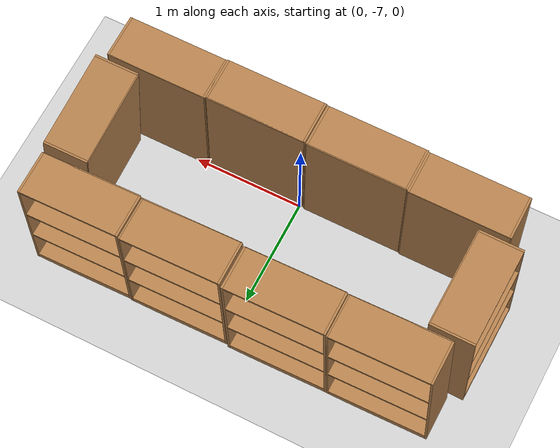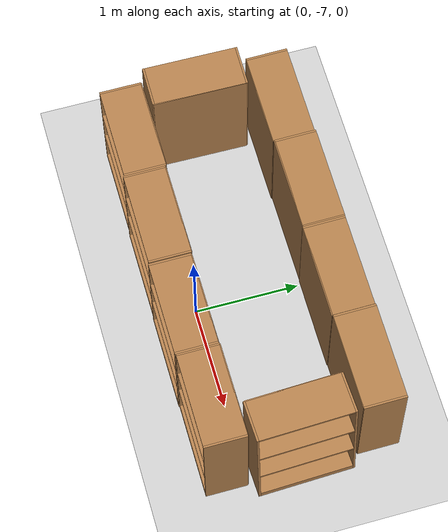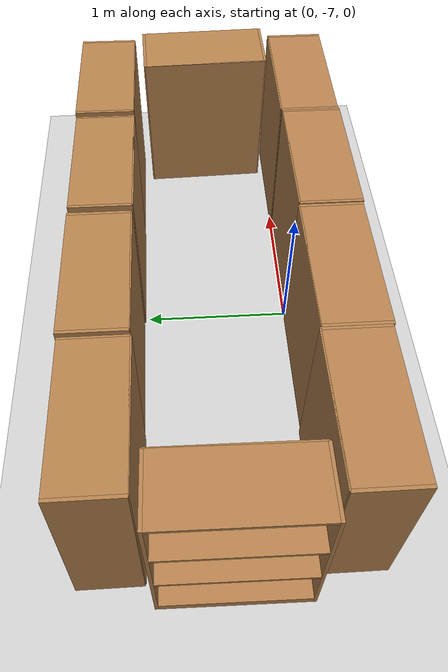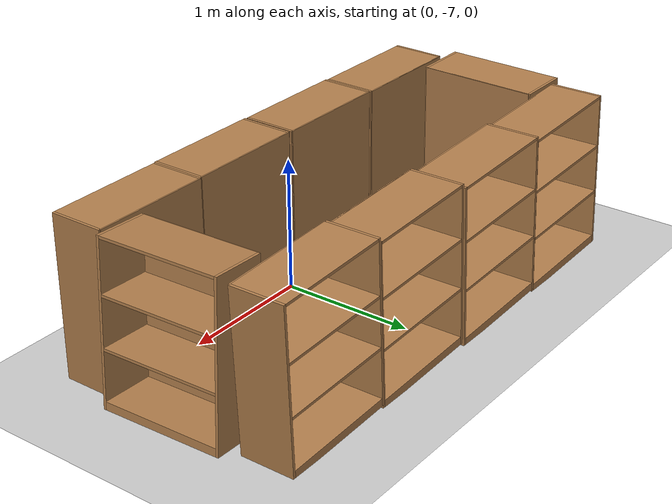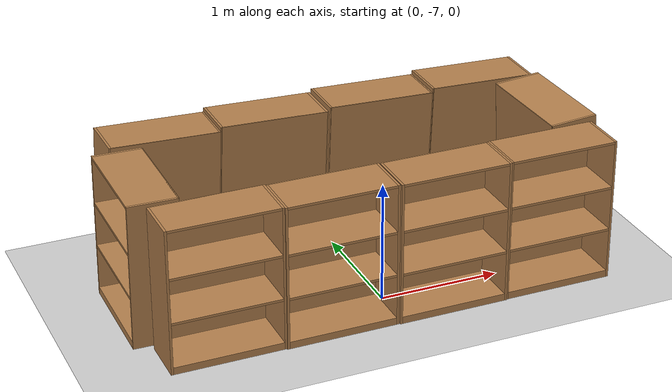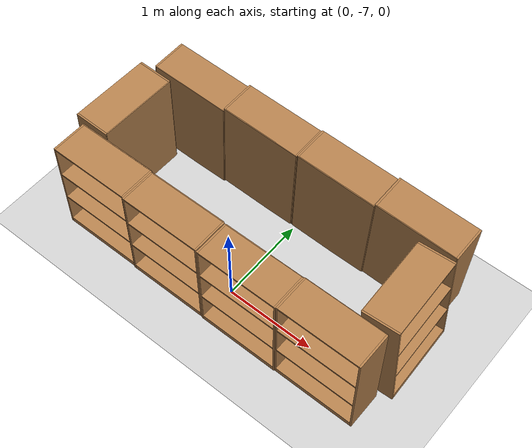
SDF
<sdf version="1.6">
 <world name="default">
  <light name="sun" type="directional">
   <pose>0 0 10 0 -0 0</pose>
   <diffuse>0.8 0.8 0.8 1</diffuse>
   <specular>0.2 0.2 0.2 1</specular>
   <attenuation>
    <range>1000</range>
    <constant>0.9</constant>
    <linear>0.01</linear>
    <quadratic>0.001</quadratic>
   </attenuation>
   <direction>-0.5 0.1 -0.9</direction>
  </light>
  <model name="ground_plane">
   <static>1</static>
   <link name="link">
    <collision name="collision">
     <geometry><plane><normal>0 0 1</normal><size>100 100</size></plane></geometry>
     <surface>
      <contact><collide_bitmask>65535</collide_bitmask></contact>
      <friction><ode><mu>100</mu><mu2>50</mu2></ode></friction>
     </surface>
    </collision>
    <visual name="visual">
     <cast_shadows>0</cast_shadows>
     <geometry><plane><normal>0 0 1</normal><size>100 100</size></plane></geometry>
     <material>
      <script><uri>file://media/materials/scripts/gazebo.material</uri><name>Gazebo/Grey</name></script>
     </material>
    </visual>
   </link>
  </model>
  <gravity>0 0 -9.8</gravity>
  <magnetic_field>6e-06 2.3e-05 -4.2e-05</magnetic_field>
  <atmosphere type="adiabatic"/>
  <physics name="default_physics" default="0" type="ode">
   <max_step_size>0.001</max_step_size>
   <real_time_factor>1</real_time_factor>
   <real_time_update_rate>1000</real_time_update_rate>
  </physics>
  <scene><ambient>0.4 0.4 0.4 1</ambient><background>0.7 0.7 0.7 1</background><shadows>1</shadows></scene>
  <spherical_coordinates>
   <surface_model>EARTH_WGS84</surface_model>
   <latitude_deg>0</latitude_deg>
   <longitude_deg>0</longitude_deg>
   <elevation>0</elevation>
   <heading_deg>0</heading_deg>
  </spherical_coordinates>
  <model name="bookshelf">
   <static>1</static>
   <link name="link">
    <inertial><mass>1</mass></inertial>
    <collision name="back">
     <pose>0 0.005 0.6 0 -0 0</pose>
     <geometry><box><size>0.9 0.01 1.2</size></box></geometry>
    </collision>
    <visual name="visual1">
     <pose>0 0.005 0.6 0 -0 0</pose>
     <geometry><box><size>0.9 0.01 1.2</size></box></geometry>
     <material>
      <script><uri>file://media/materials/scripts/gazebo.material</uri><name>Gazebo/Wood</name></script>
     </material>
    </visual>
    <collision name="left_side">
     <pose>0.45 -0.195 0.6 0 -0 0</pose>
     <geometry><box><size>0.02 0.4 1.2</size></box></geometry>
    </collision>
    <visual name="visual2">
     <pose>0.45 -0.195 0.6 0 -0 0</pose>
     <geometry><box><size>0.02 0.4 1.2</size></box></geometry>
     <material>
      <script><uri>file://media/materials/scripts/gazebo.material</uri><name>Gazebo/Wood</name></script>
     </material>
    </visual>
    <collision name="right_side">
     <pose>-0.45 -0.195 0.6 0 -0 0</pose>
     <geometry><box><size>0.02 0.4 1.2</size></box></geometry>
    </collision>
    <visual name="visual3">
     <pose>-0.45 -0.195 0.6 0 -0 0</pose>
     <geometry><box><size>0.02 0.4 1.2</size></box></geometry>
     <material>
      <script><uri>file://media/materials/scripts/gazebo.material</uri><name>Gazebo/Wood</name></script>
     </material>
    </visual>
    <collision name="bottom">
     <pose>0 -0.195 0.03 0 -0 0</pose>
     <geometry><box><size>0.88 0.4 0.06</size></box></geometry>
    </collision>
    <visual name="visual4">
     <pose>0 -0.195 0.03 0 -0 0</pose>
     <geometry><box><size>0.88 0.4 0.06</size></box></geometry>
     <material>
      <script><uri>file://media/materials/scripts/gazebo.material</uri><name>Gazebo/Wood</name></script>
     </material>
    </visual>
    <collision name="top">
     <pose>0 -0.195 1.19 0 -0 0</pose>
     <geometry><box><size>0.88 0.4 0.02</size></box></geometry>
    </collision>
    <visual name="visual5">
     <pose>0 -0.195 1.19 0 -0 0</pose>
     <geometry><box><size>0.88 0.4 0.02</size></box></geometry>
     <material>
      <script><uri>file://media/materials/scripts/gazebo.material</uri><name>Gazebo/Wood</name></script>
     </material>
    </visual>
    <collision name="low_shelf">
     <pose>0 -0.195 0.43 0 -0 0</pose>
     <geometry><box><size>0.88 0.4 0.02</size></box></geometry>
    </collision>
    <visual name="visual6">
     <pose>0 -0.195 0.43 0 -0 0</pose>
     <geometry><box><size>0.88 0.4 0.02</size></box></geometry>
     <material>
      <script><uri>file://media/materials/scripts/gazebo.material</uri><name>Gazebo/Wood</name></script>
     </material>
    </visual>
    <collision name="high_shelf">
     <pose>0 -0.195 0.8 0 -0 0</pose>
     <geometry><box><size>0.88 0.4 0.02</size></box></geometry>
    </collision>
    <visual name="visual7">
     <pose>0 -0.195 0.8 0 -0 0</pose>
     <geometry><box><size>0.88 0.4 0.02</size></box></geometry>
     <material>
      <script><uri>file://media/materials/scripts/gazebo.material</uri><name>Gazebo/Wood</name></script>
     </material>
    </visual>
   </link>
   <pose>0.430535 -7.0148 0 0 -0 0</pose>
  </model>
  <model name="bookshelf_0">
   <static>1</static>
   <link name="link">
    <inertial><mass>1</mass></inertial>
    <collision name="back">
     <pose>0 0.005 0.6 0 -0 0</pose>
     <geometry><box><size>0.9 0.01 1.2</size></box></geometry>
    </collision>
    <visual name="visual1">
     <pose>0 0.005 0.6 0 -0 0</pose>
     <geometry><box><size>0.9 0.01 1.2</size></box></geometry>
     <material>
      <script><uri>file://media/materials/scripts/gazebo.material</uri><name>Gazebo/Wood</name></script>
     </material>
    </visual>
    <collision name="left_side">
     <pose>0.45 -0.195 0.6 0 -0 0</pose>
     <geometry><box><size>0.02 0.4 1.2</size></box></geometry>
    </collision>
    <visual name="visual2">
     <pose>0.45 -0.195 0.6 0 -0 0</pose>
     <geometry><box><size>0.02 0.4 1.2</size></box></geometry>
     <material>
      <script><uri>file://media/materials/scripts/gazebo.material</uri><name>Gazebo/Wood</name></script>
     </material>
    </visual>
    <collision name="right_side">
     <pose>-0.45 -0.195 0.6 0 -0 0</pose>
     <geometry><box><size>0.02 0.4 1.2</size></box></geometry>
    </collision>
    <visual name="visual3">
     <pose>-0.45 -0.195 0.6 0 -0 0</pose>
     <geometry><box><size>0.02 0.4 1.2</size></box></geometry>
     <material>
      <script><uri>file://media/materials/scripts/gazebo.material</uri><name>Gazebo/Wood</name></script>
     </material>
    </visual>
    <collision name="bottom">
     <pose>0 -0.195 0.03 0 -0 0</pose>
     <geometry><box><size>0.88 0.4 0.06</size></box></geometry>
    </collision>
    <visual name="visual4">
     <pose>0 -0.195 0.03 0 -0 0</pose>
     <geometry><box><size>0.88 0.4 0.06</size></box></geometry>
     <material>
      <script><uri>file://media/materials/scripts/gazebo.material</uri><name>Gazebo/Wood</name></script>
     </material>
    </visual>
    <collision name="top">
     <pose>0 -0.195 1.19 0 -0 0</pose>
     <geometry><box><size>0.88 0.4 0.02</size></box></geometry>
    </collision>
    <visual name="visual5">
     <pose>0 -0.195 1.19 0 -0 0</pose>
     <geometry><box><size>0.88 0.4 0.02</size></box></geometry>
     <material>
      <script><uri>file://media/materials/scripts/gazebo.material</uri><name>Gazebo/Wood</name></script>
     </material>
    </visual>
    <collision name="low_shelf">
     <pose>0 -0.195 0.43 0 -0 0</pose>
     <geometry><box><size>0.88 0.4 0.02</size></box></geometry>
    </collision>
    <visual name="visual6">
     <pose>0 -0.195 0.43 0 -0 0</pose>
     <geometry><box><size>0.88 0.4 0.02</size></box></geometry>
     <material>
      <script><uri>file://media/materials/scripts/gazebo.material</uri><name>Gazebo/Wood</name></script>
     </material>
    </visual>
    <collision name="high_shelf">
     <pose>0 -0.195 0.8 0 -0 0</pose>
     <geometry><box><size>0.88 0.4 0.02</size></box></geometry>
    </collision>
    <visual name="visual7">
     <pose>0 -0.195 0.8 0 -0 0</pose>
     <geometry><box><size>0.88 0.4 0.02</size></box></geometry>
     <material>
      <script><uri>file://media/materials/scripts/gazebo.material</uri><name>Gazebo/Wood</name></script>
     </material>
    </visual>
   </link>
   <pose>-0.497035 -7.00727 0 0 -0 0</pose>
  </model>
  <model name="bookshelf_1">
   <static>1</static>
   <link name="link">
    <inertial><mass>1</mass></inertial>
    <collision name="back">
     <pose>0 0.005 0.6 0 -0 0</pose>
     <geometry><box><size>0.9 0.01 1.2</size></box></geometry>
    </collision>
    <visual name="visual1">
     <pose>0 0.005 0.6 0 -0 0</pose>
     <geometry><box><size>0.9 0.01 1.2</size></box></geometry>
     <material>
      <script><uri>file://media/materials/scripts/gazebo.material</uri><name>Gazebo/Wood</name></script>
     </material>
    </visual>
    <collision name="left_side">
     <pose>0.45 -0.195 0.6 0 -0 0</pose>
     <geometry><box><size>0.02 0.4 1.2</size></box></geometry>
    </collision>
    <visual name="visual2">
     <pose>0.45 -0.195 0.6 0 -0 0</pose>
     <geometry><box><size>0.02 0.4 1.2</size></box></geometry>
     <material>
      <script><uri>file://media/materials/scripts/gazebo.material</uri><name>Gazebo/Wood</name></script>
     </material>
    </visual>
    <collision name="right_side">
     <pose>-0.45 -0.195 0.6 0 -0 0</pose>
     <geometry><box><size>0.02 0.4 1.2</size></box></geometry>
    </collision>
    <visual name="visual3">
     <pose>-0.45 -0.195 0.6 0 -0 0</pose>
     <geometry><box><size>0.02 0.4 1.2</size></box></geometry>
     <material>
      <script><uri>file://media/materials/scripts/gazebo.material</uri><name>Gazebo/Wood</name></script>
     </material>
    </visual>
    <collision name="bottom">
     <pose>0 -0.195 0.03 0 -0 0</pose>
     <geometry><box><size>0.88 0.4 0.06</size></box></geometry>
    </collision>
    <visual name="visual4">
     <pose>0 -0.195 0.03 0 -0 0</pose>
     <geometry><box><size>0.88 0.4 0.06</size></box></geometry>
     <material>
      <script><uri>file://media/materials/scripts/gazebo.material</uri><name>Gazebo/Wood</name></script>
     </material>
    </visual>
    <collision name="top">
     <pose>0 -0.195 1.19 0 -0 0</pose>
     <geometry><box><size>0.88 0.4 0.02</size></box></geometry>
    </collision>
    <visual name="visual5">
     <pose>0 -0.195 1.19 0 -0 0</pose>
     <geometry><box><size>0.88 0.4 0.02</size></box></geometry>
     <material>
      <script><uri>file://media/materials/scripts/gazebo.material</uri><name>Gazebo/Wood</name></script>
     </material>
    </visual>
    <collision name="low_shelf">
     <pose>0 -0.195 0.43 0 -0 0</pose>
     <geometry><box><size>0.88 0.4 0.02</size></box></geometry>
    </collision>
    <visual name="visual6">
     <pose>0 -0.195 0.43 0 -0 0</pose>
     <geometry><box><size>0.88 0.4 0.02</size></box></geometry>
     <material>
      <script><uri>file://media/materials/scripts/gazebo.material</uri><name>Gazebo/Wood</name></script>
     </material>
    </visual>
    <collision name="high_shelf">
     <pose>0 -0.195 0.8 0 -0 0</pose>
     <geometry><box><size>0.88 0.4 0.02</size></box></geometry>
    </collision>
    <visual name="visual7">
     <pose>0 -0.195 0.8 0 -0 0</pose>
     <geometry><box><size>0.88 0.4 0.02</size></box></geometry>
     <material>
      <script><uri>file://media/materials/scripts/gazebo.material</uri><name>Gazebo/Wood</name></script>
     </material>
    </visual>
   </link>
   <pose>-1.41557 -6.99715 0 0 -0 0</pose>
  </model>
  <model name="bookshelf_2">
   <static>1</static>
   <link name="link">
    <inertial><mass>1</mass></inertial>
    <collision name="back">
     <pose>0 0.005 0.6 0 -0 0</pose>
     <geometry><box><size>0.9 0.01 1.2</size></box></geometry>
    </collision>
    <visual name="visual1">
     <pose>0 0.005 0.6 0 -0 0</pose>
     <geometry><box><size>0.9 0.01 1.2</size></box></geometry>
     <material>
      <script><uri>file://media/materials/scripts/gazebo.material</uri><name>Gazebo/Wood</name></script>
     </material>
    </visual>
    <collision name="left_side">
     <pose>0.45 -0.195 0.6 0 -0 0</pose>
     <geometry><box><size>0.02 0.4 1.2</size></box></geometry>
    </collision>
    <visual name="visual2">
     <pose>0.45 -0.195 0.6 0 -0 0</pose>
     <geometry><box><size>0.02 0.4 1.2</size></box></geometry>
     <material>
      <script><uri>file://media/materials/scripts/gazebo.material</uri><name>Gazebo/Wood</name></script>
     </material>
    </visual>
    <collision name="right_side">
     <pose>-0.45 -0.195 0.6 0 -0 0</pose>
     <geometry><box><size>0.02 0.4 1.2</size></box></geometry>
    </collision>
    <visual name="visual3">
     <pose>-0.45 -0.195 0.6 0 -0 0</pose>
     <geometry><box><size>0.02 0.4 1.2</size></box></geometry>
     <material>
      <script><uri>file://media/materials/scripts/gazebo.material</uri><name>Gazebo/Wood</name></script>
     </material>
    </visual>
    <collision name="bottom">
     <pose>0 -0.195 0.03 0 -0 0</pose>
     <geometry><box><size>0.88 0.4 0.06</size></box></geometry>
    </collision>
    <visual name="visual4">
     <pose>0 -0.195 0.03 0 -0 0</pose>
     <geometry><box><size>0.88 0.4 0.06</size></box></geometry>
     <material>
      <script><uri>file://media/materials/scripts/gazebo.material</uri><name>Gazebo/Wood</name></script>
     </material>
    </visual>
    <collision name="top">
     <pose>0 -0.195 1.19 0 -0 0</pose>
     <geometry><box><size>0.88 0.4 0.02</size></box></geometry>
    </collision>
    <visual name="visual5">
     <pose>0 -0.195 1.19 0 -0 0</pose>
     <geometry><box><size>0.88 0.4 0.02</size></box></geometry>
     <material>
      <script><uri>file://media/materials/scripts/gazebo.material</uri><name>Gazebo/Wood</name></script>
     </material>
    </visual>
    <collision name="low_shelf">
     <pose>0 -0.195 0.43 0 -0 0</pose>
     <geometry><box><size>0.88 0.4 0.02</size></box></geometry>
    </collision>
    <visual name="visual6">
     <pose>0 -0.195 0.43 0 -0 0</pose>
     <geometry><box><size>0.88 0.4 0.02</size></box></geometry>
     <material>
      <script><uri>file://media/materials/scripts/gazebo.material</uri><name>Gazebo/Wood</name></script>
     </material>
    </visual>
    <collision name="high_shelf">
     <pose>0 -0.195 0.8 0 -0 0</pose>
     <geometry><box><size>0.88 0.4 0.02</size></box></geometry>
    </collision>
    <visual name="visual7">
     <pose>0 -0.195 0.8 0 -0 0</pose>
     <geometry><box><size>0.88 0.4 0.02</size></box></geometry>
     <material>
      <script><uri>file://media/materials/scripts/gazebo.material</uri><name>Gazebo/Wood</name></script>
     </material>
    </visual>
   </link>
   <pose>1.34735 -7.00743 0 0 -0 0</pose>
  </model>
  <model name="bookshelf_3">
   <static>1</static>
   <link name="link">
    <inertial><mass>1</mass></inertial>
    <collision name="back">
     <pose>0 0.005 0.6 0 -0 0</pose>
     <geometry><box><size>0.9 0.01 1.2</size></box></geometry>
    </collision>
    <visual name="visual1">
     <pose>0 0.005 0.6 0 -0 0</pose>
     <geometry><box><size>0.9 0.01 1.2</size></box></geometry>
     <material>
      <script><uri>file://media/materials/scripts/gazebo.material</uri><name>Gazebo/Wood</name></script>
     </material>
    </visual>
    <collision name="left_side">
     <pose>0.45 -0.195 0.6 0 -0 0</pose>
     <geometry><box><size>0.02 0.4 1.2</size></box></geometry>
    </collision>
    <visual name="visual2">
     <pose>0.45 -0.195 0.6 0 -0 0</pose>
     <geometry><box><size>0.02 0.4 1.2</size></box></geometry>
     <material>
      <script><uri>file://media/materials/scripts/gazebo.material</uri><name>Gazebo/Wood</name></script>
     </material>
    </visual>
    <collision name="right_side">
     <pose>-0.45 -0.195 0.6 0 -0 0</pose>
     <geometry><box><size>0.02 0.4 1.2</size></box></geometry>
    </collision>
    <visual name="visual3">
     <pose>-0.45 -0.195 0.6 0 -0 0</pose>
     <geometry><box><size>0.02 0.4 1.2</size></box></geometry>
     <material>
      <script><uri>file://media/materials/scripts/gazebo.material</uri><name>Gazebo/Wood</name></script>
     </material>
    </visual>
    <collision name="bottom">
     <pose>0 -0.195 0.03 0 -0 0</pose>
     <geometry><box><size>0.88 0.4 0.06</size></box></geometry>
    </collision>
    <visual name="visual4">
     <pose>0 -0.195 0.03 0 -0 0</pose>
     <geometry><box><size>0.88 0.4 0.06</size></box></geometry>
     <material>
      <script><uri>file://media/materials/scripts/gazebo.material</uri><name>Gazebo/Wood</name></script>
     </material>
    </visual>
    <collision name="top">
     <pose>0 -0.195 1.19 0 -0 0</pose>
     <geometry><box><size>0.88 0.4 0.02</size></box></geometry>
    </collision>
    <visual name="visual5">
     <pose>0 -0.195 1.19 0 -0 0</pose>
     <geometry><box><size>0.88 0.4 0.02</size></box></geometry>
     <material>
      <script><uri>file://media/materials/scripts/gazebo.material</uri><name>Gazebo/Wood</name></script>
     </material>
    </visual>
    <collision name="low_shelf">
     <pose>0 -0.195 0.43 0 -0 0</pose>
     <geometry><box><size>0.88 0.4 0.02</size></box></geometry>
    </collision>
    <visual name="visual6">
     <pose>0 -0.195 0.43 0 -0 0</pose>
     <geometry><box><size>0.88 0.4 0.02</size></box></geometry>
     <material>
      <script><uri>file://media/materials/scripts/gazebo.material</uri><name>Gazebo/Wood</name></script>
     </material>
    </visual>
    <collision name="high_shelf">
     <pose>0 -0.195 0.8 0 -0 0</pose>
     <geometry><box><size>0.88 0.4 0.02</size></box></geometry>
    </collision>
    <visual name="visual7">
     <pose>0 -0.195 0.8 0 -0 0</pose>
     <geometry><box><size>0.88 0.4 0.02</size></box></geometry>
     <material>
      <script><uri>file://media/materials/scripts/gazebo.material</uri><name>Gazebo/Wood</name></script>
     </material>
    </visual>
   </link>
   <pose>1.53957 -6.49468 0 -0.054183 -0.002472 1.60166</pose>
  </model>
  <model name="bookshelf_3_clone">
   <static>1</static>
   <link name="link">
    <inertial><mass>1</mass></inertial>
    <collision name="back">
     <pose>0 0.005 0.6 0 -0 0</pose>
     <geometry><box><size>0.9 0.01 1.2</size></box></geometry>
    </collision>
    <visual name="visual1">
     <pose>0 0.005 0.6 0 -0 0</pose>
     <geometry><box><size>0.9 0.01 1.2</size></box></geometry>
     <material>
      <script><uri>file://media/materials/scripts/gazebo.material</uri><name>Gazebo/Wood</name></script>
     </material>
    </visual>
    <collision name="left_side">
     <pose>0.45 -0.195 0.6 0 -0 0</pose>
     <geometry><box><size>0.02 0.4 1.2</size></box></geometry>
    </collision>
    <visual name="visual2">
     <pose>0.45 -0.195 0.6 0 -0 0</pose>
     <geometry><box><size>0.02 0.4 1.2</size></box></geometry>
     <material>
      <script><uri>file://media/materials/scripts/gazebo.material</uri><name>Gazebo/Wood</name></script>
     </material>
    </visual>
    <collision name="right_side">
     <pose>-0.45 -0.195 0.6 0 -0 0</pose>
     <geometry><box><size>0.02 0.4 1.2</size></box></geometry>
    </collision>
    <visual name="visual3">
     <pose>-0.45 -0.195 0.6 0 -0 0</pose>
     <geometry><box><size>0.02 0.4 1.2</size></box></geometry>
     <material>
      <script><uri>file://media/materials/scripts/gazebo.material</uri><name>Gazebo/Wood</name></script>
     </material>
    </visual>
    <collision name="bottom">
     <pose>0 -0.195 0.03 0 -0 0</pose>
     <geometry><box><size>0.88 0.4 0.06</size></box></geometry>
    </collision>
    <visual name="visual4">
     <pose>0 -0.195 0.03 0 -0 0</pose>
     <geometry><box><size>0.88 0.4 0.06</size></box></geometry>
     <material>
      <script><uri>file://media/materials/scripts/gazebo.material</uri><name>Gazebo/Wood</name></script>
     </material>
    </visual>
    <collision name="top">
     <pose>0 -0.195 1.19 0 -0 0</pose>
     <geometry><box><size>0.88 0.4 0.02</size></box></geometry>
    </collision>
    <visual name="visual5">
     <pose>0 -0.195 1.19 0 -0 0</pose>
     <geometry><box><size>0.88 0.4 0.02</size></box></geometry>
     <material>
      <script><uri>file://media/materials/scripts/gazebo.material</uri><name>Gazebo/Wood</name></script>
     </material>
    </visual>
    <collision name="low_shelf">
     <pose>0 -0.195 0.43 0 -0 0</pose>
     <geometry><box><size>0.88 0.4 0.02</size></box></geometry>
    </collision>
    <visual name="visual6">
     <pose>0 -0.195 0.43 0 -0 0</pose>
     <geometry><box><size>0.88 0.4 0.02</size></box></geometry>
     <material>
      <script><uri>file://media/materials/scripts/gazebo.material</uri><name>Gazebo/Wood</name></script>
     </material>
    </visual>
    <collision name="high_shelf">
     <pose>0 -0.195 0.8 0 -0 0</pose>
     <geometry><box><size>0.88 0.4 0.02</size></box></geometry>
    </collision>
    <visual name="visual7">
     <pose>0 -0.195 0.8 0 -0 0</pose>
     <geometry><box><size>0.88 0.4 0.02</size></box></geometry>
     <material>
      <script><uri>file://media/materials/scripts/gazebo.material</uri><name>Gazebo/Wood</name></script>
     </material>
    </visual>
   </link>
   <pose>1.32986 -5.95475 0 -0.007372 -0.036243 -3.13718</pose>
  </model>
  <model name="bookshelf_3_clone_clone">
   <static>1</static>
   <link name="link">
    <inertial><mass>1</mass></inertial>
    <collision name="back">
     <pose>0 0.005 0.6 0 -0 0</pose>
     <geometry><box><size>0.9 0.01 1.2</size></box></geometry>
    </collision>
    <visual name="visual1">
     <pose>0 0.005 0.6 0 -0 0</pose>
     <geometry><box><size>0.9 0.01 1.2</size></box></geometry>
     <material>
      <script><uri>file://media/materials/scripts/gazebo.material</uri><name>Gazebo/Wood</name></script>
     </material>
    </visual>
    <collision name="left_side">
     <pose>0.45 -0.195 0.6 0 -0 0</pose>
     <geometry><box><size>0.02 0.4 1.2</size></box></geometry>
    </collision>
    <visual name="visual2">
     <pose>0.45 -0.195 0.6 0 -0 0</pose>
     <geometry><box><size>0.02 0.4 1.2</size></box></geometry>
     <material>
      <script><uri>file://media/materials/scripts/gazebo.material</uri><name>Gazebo/Wood</name></script>
     </material>
    </visual>
    <collision name="right_side">
     <pose>-0.45 -0.195 0.6 0 -0 0</pose>
     <geometry><box><size>0.02 0.4 1.2</size></box></geometry>
    </collision>
    <visual name="visual3">
     <pose>-0.45 -0.195 0.6 0 -0 0</pose>
     <geometry><box><size>0.02 0.4 1.2</size></box></geometry>
     <material>
      <script><uri>file://media/materials/scripts/gazebo.material</uri><name>Gazebo/Wood</name></script>
     </material>
    </visual>
    <collision name="bottom">
     <pose>0 -0.195 0.03 0 -0 0</pose>
     <geometry><box><size>0.88 0.4 0.06</size></box></geometry>
    </collision>
    <visual name="visual4">
     <pose>0 -0.195 0.03 0 -0 0</pose>
     <geometry><box><size>0.88 0.4 0.06</size></box></geometry>
     <material>
      <script><uri>file://media/materials/scripts/gazebo.material</uri><name>Gazebo/Wood</name></script>
     </material>
    </visual>
    <collision name="top">
     <pose>0 -0.195 1.19 0 -0 0</pose>
     <geometry><box><size>0.88 0.4 0.02</size></box></geometry>
    </collision>
    <visual name="visual5">
     <pose>0 -0.195 1.19 0 -0 0</pose>
     <geometry><box><size>0.88 0.4 0.02</size></box></geometry>
     <material>
      <script><uri>file://media/materials/scripts/gazebo.material</uri><name>Gazebo/Wood</name></script>
     </material>
    </visual>
    <collision name="low_shelf">
     <pose>0 -0.195 0.43 0 -0 0</pose>
     <geometry><box><size>0.88 0.4 0.02</size></box></geometry>
    </collision>
    <visual name="visual6">
     <pose>0 -0.195 0.43 0 -0 0</pose>
     <geometry><box><size>0.88 0.4 0.02</size></box></geometry>
     <material>
      <script><uri>file://media/materials/scripts/gazebo.material</uri><name>Gazebo/Wood</name></script>
     </material>
    </visual>
    <collision name="high_shelf">
     <pose>0 -0.195 0.8 0 -0 0</pose>
     <geometry><box><size>0.88 0.4 0.02</size></box></geometry>
    </collision>
    <visual name="visual7">
     <pose>0 -0.195 0.8 0 -0 0</pose>
     <geometry><box><size>0.88 0.4 0.02</size></box></geometry>
     <material>
      <script><uri>file://media/materials/scripts/gazebo.material</uri><name>Gazebo/Wood</name></script>
     </material>
    </visual>
   </link>
   <pose>0.415395 -5.96035 0 -0.007372 -0.036243 -3.13718</pose>
  </model>
  <model name="bookshelf_3_clone_clone_0">
   <static>1</static>
   <link name="link">
    <inertial><mass>1</mass></inertial>
    <collision name="back">
     <pose>0 0.005 0.6 0 -0 0</pose>
     <geometry><box><size>0.9 0.01 1.2</size></box></geometry>
    </collision>
    <visual name="visual1">
     <pose>0 0.005 0.6 0 -0 0</pose>
     <geometry><box><size>0.9 0.01 1.2</size></box></geometry>
     <material>
      <script><uri>file://media/materials/scripts/gazebo.material</uri><name>Gazebo/Wood</name></script>
     </material>
    </visual>
    <collision name="left_side">
     <pose>0.45 -0.195 0.6 0 -0 0</pose>
     <geometry><box><size>0.02 0.4 1.2</size></box></geometry>
    </collision>
    <visual name="visual2">
     <pose>0.45 -0.195 0.6 0 -0 0</pose>
     <geometry><box><size>0.02 0.4 1.2</size></box></geometry>
     <material>
      <script><uri>file://media/materials/scripts/gazebo.material</uri><name>Gazebo/Wood</name></script>
     </material>
    </visual>
    <collision name="right_side">
     <pose>-0.45 -0.195 0.6 0 -0 0</pose>
     <geometry><box><size>0.02 0.4 1.2</size></box></geometry>
    </collision>
    <visual name="visual3">
     <pose>-0.45 -0.195 0.6 0 -0 0</pose>
     <geometry><box><size>0.02 0.4 1.2</size></box></geometry>
     <material>
      <script><uri>file://media/materials/scripts/gazebo.material</uri><name>Gazebo/Wood</name></script>
     </material>
    </visual>
    <collision name="bottom">
     <pose>0 -0.195 0.03 0 -0 0</pose>
     <geometry><box><size>0.88 0.4 0.06</size></box></geometry>
    </collision>
    <visual name="visual4">
     <pose>0 -0.195 0.03 0 -0 0</pose>
     <geometry><box><size>0.88 0.4 0.06</size></box></geometry>
     <material>
      <script><uri>file://media/materials/scripts/gazebo.material</uri><name>Gazebo/Wood</name></script>
     </material>
    </visual>
    <collision name="top">
     <pose>0 -0.195 1.19 0 -0 0</pose>
     <geometry><box><size>0.88 0.4 0.02</size></box></geometry>
    </collision>
    <visual name="visual5">
     <pose>0 -0.195 1.19 0 -0 0</pose>
     <geometry><box><size>0.88 0.4 0.02</size></box></geometry>
     <material>
      <script><uri>file://media/materials/scripts/gazebo.material</uri><name>Gazebo/Wood</name></script>
     </material>
    </visual>
    <collision name="low_shelf">
     <pose>0 -0.195 0.43 0 -0 0</pose>
     <geometry><box><size>0.88 0.4 0.02</size></box></geometry>
    </collision>
    <visual name="visual6">
     <pose>0 -0.195 0.43 0 -0 0</pose>
     <geometry><box><size>0.88 0.4 0.02</size></box></geometry>
     <material>
      <script><uri>file://media/materials/scripts/gazebo.material</uri><name>Gazebo/Wood</name></script>
     </material>
    </visual>
    <collision name="high_shelf">
     <pose>0 -0.195 0.8 0 -0 0</pose>
     <geometry><box><size>0.88 0.4 0.02</size></box></geometry>
    </collision>
    <visual name="visual7">
     <pose>0 -0.195 0.8 0 -0 0</pose>
     <geometry><box><size>0.88 0.4 0.02</size></box></geometry>
     <material>
      <script><uri>file://media/materials/scripts/gazebo.material</uri><name>Gazebo/Wood</name></script>
     </material>
    </visual>
   </link>
   <pose>-0.514588 -5.95658 0 -0.007372 -0.036243 -3.13718</pose>
  </model>
  <model name="bookshelf_3_clone_clone_1">
   <static>1</static>
   <link name="link">
    <inertial><mass>1</mass></inertial>
    <collision name="back">
     <pose>0 0.005 0.6 0 -0 0</pose>
     <geometry><box><size>0.9 0.01 1.2</size></box></geometry>
    </collision>
    <visual name="visual1">
     <pose>0 0.005 0.6 0 -0 0</pose>
     <geometry><box><size>0.9 0.01 1.2</size></box></geometry>
     <material>
      <script><uri>file://media/materials/scripts/gazebo.material</uri><name>Gazebo/Wood</name></script>
     </material>
    </visual>
    <collision name="left_side">
     <pose>0.45 -0.195 0.6 0 -0 0</pose>
     <geometry><box><size>0.02 0.4 1.2</size></box></geometry>
    </collision>
    <visual name="visual2">
     <pose>0.45 -0.195 0.6 0 -0 0</pose>
     <geometry><box><size>0.02 0.4 1.2</size></box></geometry>
     <material>
      <script><uri>file://media/materials/scripts/gazebo.material</uri><name>Gazebo/Wood</name></script>
     </material>
    </visual>
    <collision name="right_side">
     <pose>-0.45 -0.195 0.6 0 -0 0</pose>
     <geometry><box><size>0.02 0.4 1.2</size></box></geometry>
    </collision>
    <visual name="visual3">
     <pose>-0.45 -0.195 0.6 0 -0 0</pose>
     <geometry><box><size>0.02 0.4 1.2</size></box></geometry>
     <material>
      <script><uri>file://media/materials/scripts/gazebo.material</uri><name>Gazebo/Wood</name></script>
     </material>
    </visual>
    <collision name="bottom">
     <pose>0 -0.195 0.03 0 -0 0</pose>
     <geometry><box><size>0.88 0.4 0.06</size></box></geometry>
    </collision>
    <visual name="visual4">
     <pose>0 -0.195 0.03 0 -0 0</pose>
     <geometry><box><size>0.88 0.4 0.06</size></box></geometry>
     <material>
      <script><uri>file://media/materials/scripts/gazebo.material</uri><name>Gazebo/Wood</name></script>
     </material>
    </visual>
    <collision name="top">
     <pose>0 -0.195 1.19 0 -0 0</pose>
     <geometry><box><size>0.88 0.4 0.02</size></box></geometry>
    </collision>
    <visual name="visual5">
     <pose>0 -0.195 1.19 0 -0 0</pose>
     <geometry><box><size>0.88 0.4 0.02</size></box></geometry>
     <material>
      <script><uri>file://media/materials/scripts/gazebo.material</uri><name>Gazebo/Wood</name></script>
     </material>
    </visual>
    <collision name="low_shelf">
     <pose>0 -0.195 0.43 0 -0 0</pose>
     <geometry><box><size>0.88 0.4 0.02</size></box></geometry>
    </collision>
    <visual name="visual6">
     <pose>0 -0.195 0.43 0 -0 0</pose>
     <geometry><box><size>0.88 0.4 0.02</size></box></geometry>
     <material>
      <script><uri>file://media/materials/scripts/gazebo.material</uri><name>Gazebo/Wood</name></script>
     </material>
    </visual>
    <collision name="high_shelf">
     <pose>0 -0.195 0.8 0 -0 0</pose>
     <geometry><box><size>0.88 0.4 0.02</size></box></geometry>
    </collision>
    <visual name="visual7">
     <pose>0 -0.195 0.8 0 -0 0</pose>
     <geometry><box><size>0.88 0.4 0.02</size></box></geometry>
     <material>
      <script><uri>file://media/materials/scripts/gazebo.material</uri><name>Gazebo/Wood</name></script>
     </material>
    </visual>
   </link>
   <pose>-1.42911 -5.96644 0 -0.007372 -0.036243 -3.13718</pose>
  </model>
  <model name="bookshelf_3_clone_clone_2">
   <static>1</static>
   <link name="link">
    <inertial><mass>1</mass></inertial>
    <collision name="back">
     <pose>0 0.005 0.6 0 -0 0</pose>
     <geometry><box><size>0.9 0.01 1.2</size></box></geometry>
    </collision>
    <visual name="visual1">
     <pose>0 0.005 0.6 0 -0 0</pose>
     <geometry><box><size>0.9 0.01 1.2</size></box></geometry>
     <material>
      <script><uri>file://media/materials/scripts/gazebo.material</uri><name>Gazebo/Wood</name></script>
     </material>
    </visual>
    <collision name="left_side">
     <pose>0.45 -0.195 0.6 0 -0 0</pose>
     <geometry><box><size>0.02 0.4 1.2</size></box></geometry>
    </collision>
    <visual name="visual2">
     <pose>0.45 -0.195 0.6 0 -0 0</pose>
     <geometry><box><size>0.02 0.4 1.2</size></box></geometry>
     <material>
      <script><uri>file://media/materials/scripts/gazebo.material</uri><name>Gazebo/Wood</name></script>
     </material>
    </visual>
    <collision name="right_side">
     <pose>-0.45 -0.195 0.6 0 -0 0</pose>
     <geometry><box><size>0.02 0.4 1.2</size></box></geometry>
    </collision>
    <visual name="visual3">
     <pose>-0.45 -0.195 0.6 0 -0 0</pose>
     <geometry><box><size>0.02 0.4 1.2</size></box></geometry>
     <material>
      <script><uri>file://media/materials/scripts/gazebo.material</uri><name>Gazebo/Wood</name></script>
     </material>
    </visual>
    <collision name="bottom">
     <pose>0 -0.195 0.03 0 -0 0</pose>
     <geometry><box><size>0.88 0.4 0.06</size></box></geometry>
    </collision>
    <visual name="visual4">
     <pose>0 -0.195 0.03 0 -0 0</pose>
     <geometry><box><size>0.88 0.4 0.06</size></box></geometry>
     <material>
      <script><uri>file://media/materials/scripts/gazebo.material</uri><name>Gazebo/Wood</name></script>
     </material>
    </visual>
    <collision name="top">
     <pose>0 -0.195 1.19 0 -0 0</pose>
     <geometry><box><size>0.88 0.4 0.02</size></box></geometry>
    </collision>
    <visual name="visual5">
     <pose>0 -0.195 1.19 0 -0 0</pose>
     <geometry><box><size>0.88 0.4 0.02</size></box></geometry>
     <material>
      <script><uri>file://media/materials/scripts/gazebo.material</uri><name>Gazebo/Wood</name></script>
     </material>
    </visual>
    <collision name="low_shelf">
     <pose>0 -0.195 0.43 0 -0 0</pose>
     <geometry><box><size>0.88 0.4 0.02</size></box></geometry>
    </collision>
    <visual name="visual6">
     <pose>0 -0.195 0.43 0 -0 0</pose>
     <geometry><box><size>0.88 0.4 0.02</size></box></geometry>
     <material>
      <script><uri>file://media/materials/scripts/gazebo.material</uri><name>Gazebo/Wood</name></script>
     </material>
    </visual>
    <collision name="high_shelf">
     <pose>0 -0.195 0.8 0 -0 0</pose>
     <geometry><box><size>0.88 0.4 0.02</size></box></geometry>
    </collision>
    <visual name="visual7">
     <pose>0 -0.195 0.8 0 -0 0</pose>
     <geometry><box><size>0.88 0.4 0.02</size></box></geometry>
     <material>
      <script><uri>file://media/materials/scripts/gazebo.material</uri><name>Gazebo/Wood</name></script>
     </material>
    </visual>
   </link>
   <pose>-1.62382 -6.4916 0 -0.011146 -0.001772 -1.5827</pose>
  </model>
 </world>
</sdf>
